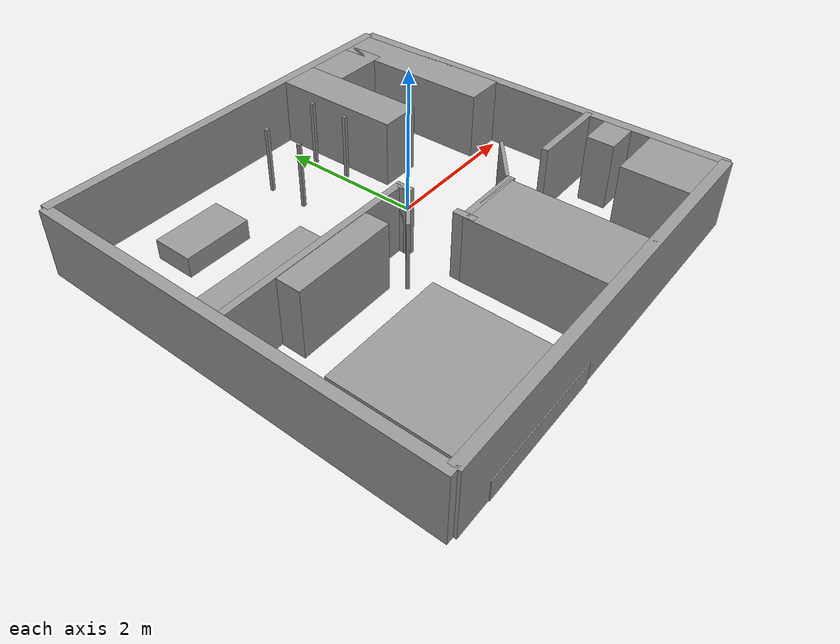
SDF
<sdf version="1.7">
 <model name="Apartment">
  <link name="link_0">
   <inertial>
    <mass>1</mass>
    <inertia>
     <ixx>0.166667</ixx>
     <ixy>0</ixy>
     <ixz>0</ixz>
     <iyy>0.166667</iyy>
     <iyz>0</iyz>
     <izz>0.166667</izz>
    </inertia>
   </inertial>
   <pose>-3.2479 -0.052565 0.051852 0 -0 0</pose>
   <visual name="visual">
    <geometry><box><size>0.15 6 1</size></box></geometry>
    <material>
     <lighting>1</lighting>
     <script><uri>file://media/materials/scripts/gazebo.material</uri><name>Gazebo/Grey</name></script>
     <shader type="pixel"><normal_map>__default__</normal_map></shader>
     <ambient>0.3 0.3 0.3 1</ambient>
     <diffuse>0.7 0.7 0.7 1</diffuse>
     <specular>0.01 0.01 0.01 1</specular>
     <emissive>0 0 0 1</emissive>
    </material>
   </visual>
   <collision name="collision">
    <geometry><box><size>0.15 6 1</size></box></geometry>
    <surface>
     <friction>
      <ode><mu>1</mu><mu2>1</mu2><fdir1>0 0 0</fdir1><slip1>0</slip1><slip2>0</slip2></ode>
      <torsional>
       <coefficient>1</coefficient>
       <patch_radius>0</patch_radius>
       <surface_radius>0</surface_radius>
       <use_patch_radius>1</use_patch_radius>
       <ode><slip>0</slip></ode>
      </torsional>
     </friction>
     <bounce><restitution_coefficient>0</restitution_coefficient><threshold>1e+06</threshold></bounce>
     <contact>
      <collide_without_contact>0</collide_without_contact>
      <collide_without_contact_bitmask>1</collide_without_contact_bitmask>
      <collide_bitmask>1</collide_bitmask>
      <ode>
       <soft_cfm>0</soft_cfm>
       <soft_erp>0.2</soft_erp>
       <kp>1e+13</kp>
       <kd>1</kd>
       <max_vel>0.01</max_vel>
       <min_depth>0</min_depth>
      </ode>
      <bullet>
       <split_impulse>1</split_impulse>
       <split_impulse_penetration_threshold>-0.01</split_impulse_penetration_threshold>
       <soft_cfm>0</soft_cfm>
       <soft_erp>0.2</soft_erp>
       <kp>1e+13</kp>
       <kd>1</kd>
      </bullet>
     </contact>
    </surface>
   </collision>
  </link>
  <link name="link_0_clone">
   <inertial>
    <mass>1</mass>
    <inertia>
     <ixx>0.166667</ixx>
     <ixy>0</ixy>
     <ixz>0</ixz>
     <iyy>0.166667</iyy>
     <iyz>0</iyz>
     <izz>0.166667</izz>
    </inertia>
   </inertial>
   <pose>2.7521 -0.052565 0.051852 0 -0 0</pose>
   <visual name="visual">
    <geometry><box><size>0.15 6 1</size></box></geometry>
    <material>
     <lighting>1</lighting>
     <script><uri>file://media/materials/scripts/gazebo.material</uri><name>Gazebo/Grey</name></script>
     <shader type="pixel"><normal_map>__default__</normal_map></shader>
     <ambient>0.3 0.3 0.3 1</ambient>
     <diffuse>0.7 0.7 0.7 1</diffuse>
     <specular>0.01 0.01 0.01 1</specular>
     <emissive>0 0 0 1</emissive>
    </material>
   </visual>
   <collision name="collision">
    <geometry><box><size>0.15 6 1</size></box></geometry>
    <surface>
     <friction>
      <ode><mu>1</mu><mu2>1</mu2><fdir1>0 0 0</fdir1><slip1>0</slip1><slip2>0</slip2></ode>
      <torsional>
       <coefficient>1</coefficient>
       <patch_radius>0</patch_radius>
       <surface_radius>0</surface_radius>
       <use_patch_radius>1</use_patch_radius>
       <ode><slip>0</slip></ode>
      </torsional>
     </friction>
     <bounce><restitution_coefficient>0</restitution_coefficient><threshold>1e+06</threshold></bounce>
     <contact>
      <collide_without_contact>0</collide_without_contact>
      <collide_without_contact_bitmask>1</collide_without_contact_bitmask>
      <collide_bitmask>1</collide_bitmask>
      <ode>
       <soft_cfm>0</soft_cfm>
       <soft_erp>0.2</soft_erp>
       <kp>1e+13</kp>
       <kd>1</kd>
       <max_vel>0.01</max_vel>
       <min_depth>0</min_depth>
      </ode>
      <bullet>
       <split_impulse>1</split_impulse>
       <split_impulse_penetration_threshold>-0.01</split_impulse_penetration_threshold>
       <soft_cfm>0</soft_cfm>
       <soft_erp>0.2</soft_erp>
       <kp>1e+13</kp>
       <kd>1</kd>
      </bullet>
     </contact>
    </surface>
   </collision>
  </link>
  <link name="link_0_clone_clone">
   <inertial>
    <mass>1</mass>
    <inertia>
     <ixx>0.166667</ixx>
     <ixy>0</ixy>
     <ixz>0</ixz>
     <iyy>0.166667</iyy>
     <iyz>0</iyz>
     <izz>0.166667</izz>
    </inertia>
   </inertial>
   <pose>-0.222232 -3.01597 0.051852 0 -0 0</pose>
   <visual name="visual">
    <geometry><box><size>6 0.15 1</size></box></geometry>
    <material>
     <lighting>1</lighting>
     <script><uri>file://media/materials/scripts/gazebo.material</uri><name>Gazebo/Grey</name></script>
     <shader type="pixel"><normal_map>__default__</normal_map></shader>
     <ambient>0.3 0.3 0.3 1</ambient>
     <diffuse>0.7 0.7 0.7 1</diffuse>
     <specular>0.01 0.01 0.01 1</specular>
     <emissive>0 0 0 1</emissive>
    </material>
   </visual>
   <collision name="collision">
    <geometry><box><size>6 0.15 1</size></box></geometry>
    <surface>
     <friction>
      <ode><mu>1</mu><mu2>1</mu2><fdir1>0 0 0</fdir1><slip1>0</slip1><slip2>0</slip2></ode>
      <torsional>
       <coefficient>1</coefficient>
       <patch_radius>0</patch_radius>
       <surface_radius>0</surface_radius>
       <use_patch_radius>1</use_patch_radius>
       <ode><slip>0</slip></ode>
      </torsional>
     </friction>
     <bounce><restitution_coefficient>0</restitution_coefficient><threshold>1e+06</threshold></bounce>
     <contact>
      <collide_without_contact>0</collide_without_contact>
      <collide_without_contact_bitmask>1</collide_without_contact_bitmask>
      <collide_bitmask>1</collide_bitmask>
      <ode>
       <soft_cfm>0</soft_cfm>
       <soft_erp>0.2</soft_erp>
       <kp>1e+13</kp>
       <kd>1</kd>
       <max_vel>0.01</max_vel>
       <min_depth>0</min_depth>
      </ode>
      <bullet>
       <split_impulse>1</split_impulse>
       <split_impulse_penetration_threshold>-0.01</split_impulse_penetration_threshold>
       <soft_cfm>0</soft_cfm>
       <soft_erp>0.2</soft_erp>
       <kp>1e+13</kp>
       <kd>1</kd>
      </bullet>
     </contact>
    </surface>
   </collision>
  </link>
  <link name="link_0_clone_clone_clone">
   <inertial>
    <mass>1</mass>
    <inertia>
     <ixx>0.166667</ixx>
     <ixy>0</ixy>
     <ixz>0</ixz>
     <iyy>0.166667</iyy>
     <iyz>0</iyz>
     <izz>0.166667</izz>
    </inertia>
   </inertial>
   <pose>-0.247898 2.94744 0.051852 0 -0 0</pose>
   <visual name="visual">
    <geometry><box><size>6 0.15 1</size></box></geometry>
    <material>
     <lighting>1</lighting>
     <script><uri>file://media/materials/scripts/gazebo.material</uri><name>Gazebo/Grey</name></script>
     <shader type="pixel"><normal_map>__default__</normal_map></shader>
     <ambient>0.3 0.3 0.3 1</ambient>
     <diffuse>0.7 0.7 0.7 1</diffuse>
     <specular>0.01 0.01 0.01 1</specular>
     <emissive>0 0 0 1</emissive>
    </material>
   </visual>
   <collision name="collision">
    <geometry><box><size>6 0.15 1</size></box></geometry>
    <surface>
     <friction>
      <ode><mu>1</mu><mu2>1</mu2><fdir1>0 0 0</fdir1><slip1>0</slip1><slip2>0</slip2></ode>
      <torsional>
       <coefficient>1</coefficient>
       <patch_radius>0</patch_radius>
       <surface_radius>0</surface_radius>
       <use_patch_radius>1</use_patch_radius>
       <ode><slip>0</slip></ode>
      </torsional>
     </friction>
     <bounce><restitution_coefficient>0</restitution_coefficient><threshold>1e+06</threshold></bounce>
     <contact>
      <collide_without_contact>0</collide_without_contact>
      <collide_without_contact_bitmask>1</collide_without_contact_bitmask>
      <collide_bitmask>1</collide_bitmask>
      <ode>
       <soft_cfm>0</soft_cfm>
       <soft_erp>0.2</soft_erp>
       <kp>1e+13</kp>
       <kd>1</kd>
       <max_vel>0.01</max_vel>
       <min_depth>0</min_depth>
      </ode>
      <bullet>
       <split_impulse>1</split_impulse>
       <split_impulse_penetration_threshold>-0.01</split_impulse_penetration_threshold>
       <soft_cfm>0</soft_cfm>
       <soft_erp>0.2</soft_erp>
       <kp>1e+13</kp>
       <kd>1</kd>
      </bullet>
     </contact>
    </surface>
   </collision>
  </link>
  <link name="link_0_clone_clone_clone_clone">
   <inertial>
    <mass>1</mass>
    <inertia>
     <ixx>0.166667</ixx>
     <ixy>0</ixy>
     <ixz>0</ixz>
     <iyy>0.166667</iyy>
     <iyz>0</iyz>
     <izz>0.166667</izz>
    </inertia>
   </inertial>
   <pose>-1.7479 -0.052565 0.051852 0 -0 0</pose>
   <visual name="visual">
    <geometry><box><size>3 0.1 1</size></box></geometry>
    <material>
     <lighting>1</lighting>
     <script><uri>file://media/materials/scripts/gazebo.material</uri><name>Gazebo/Grey</name></script>
     <shader type="pixel"><normal_map>__default__</normal_map></shader>
     <ambient>0.3 0.3 0.3 1</ambient>
     <diffuse>0.7 0.7 0.7 1</diffuse>
     <specular>0.01 0.01 0.01 1</specular>
     <emissive>0 0 0 1</emissive>
    </material>
   </visual>
   <collision name="collision">
    <geometry><box><size>3 0.1 1</size></box></geometry>
    <surface>
     <friction>
      <ode><mu>1</mu><mu2>1</mu2><fdir1>0 0 0</fdir1><slip1>0</slip1><slip2>0</slip2></ode>
      <torsional>
       <coefficient>1</coefficient>
       <patch_radius>0</patch_radius>
       <surface_radius>0</surface_radius>
       <use_patch_radius>1</use_patch_radius>
       <ode><slip>0</slip></ode>
      </torsional>
     </friction>
     <bounce><restitution_coefficient>0</restitution_coefficient><threshold>1e+06</threshold></bounce>
     <contact>
      <collide_without_contact>0</collide_without_contact>
      <collide_without_contact_bitmask>1</collide_without_contact_bitmask>
      <collide_bitmask>1</collide_bitmask>
      <ode>
       <soft_cfm>0</soft_cfm>
       <soft_erp>0.2</soft_erp>
       <kp>1e+13</kp>
       <kd>1</kd>
       <max_vel>0.01</max_vel>
       <min_depth>0</min_depth>
      </ode>
      <bullet>
       <split_impulse>1</split_impulse>
       <split_impulse_penetration_threshold>-0.01</split_impulse_penetration_threshold>
       <soft_cfm>0</soft_cfm>
       <soft_erp>0.2</soft_erp>
       <kp>1e+13</kp>
       <kd>1</kd>
      </bullet>
     </contact>
    </surface>
   </collision>
  </link>
  <link name="link_0_clone_clone_clone_clone_clone">
   <inertial>
    <mass>1</mass>
    <inertia>
     <ixx>0.166667</ixx>
     <ixy>0</ixy>
     <ixz>0</ixz>
     <iyy>0.166667</iyy>
     <iyz>0</iyz>
     <izz>0.166667</izz>
    </inertia>
   </inertial>
   <pose>2.1521 -1.05256 0.051852 0 -0 0</pose>
   <visual name="visual">
    <geometry><box><size>1.2 0.1 1</size></box></geometry>
    <material>
     <lighting>1</lighting>
     <script><uri>file://media/materials/scripts/gazebo.material</uri><name>Gazebo/Grey</name></script>
     <shader type="pixel"><normal_map>__default__</normal_map></shader>
     <ambient>0.3 0.3 0.3 1</ambient>
     <diffuse>0.7 0.7 0.7 1</diffuse>
     <specular>0.01 0.01 0.01 1</specular>
     <emissive>0 0 0 1</emissive>
    </material>
   </visual>
   <collision name="collision">
    <geometry><box><size>1.2 0.1 1</size></box></geometry>
    <surface>
     <friction>
      <ode><mu>1</mu><mu2>1</mu2><fdir1>0 0 0</fdir1><slip1>0</slip1><slip2>0</slip2></ode>
      <torsional>
       <coefficient>1</coefficient>
       <patch_radius>0</patch_radius>
       <surface_radius>0</surface_radius>
       <use_patch_radius>1</use_patch_radius>
       <ode><slip>0</slip></ode>
      </torsional>
     </friction>
     <bounce><restitution_coefficient>0</restitution_coefficient><threshold>1e+06</threshold></bounce>
     <contact>
      <collide_without_contact>0</collide_without_contact>
      <collide_without_contact_bitmask>1</collide_without_contact_bitmask>
      <collide_bitmask>1</collide_bitmask>
      <ode>
       <soft_cfm>0</soft_cfm>
       <soft_erp>0.2</soft_erp>
       <kp>1e+13</kp>
       <kd>1</kd>
       <max_vel>0.01</max_vel>
       <min_depth>0</min_depth>
      </ode>
      <bullet>
       <split_impulse>1</split_impulse>
       <split_impulse_penetration_threshold>-0.01</split_impulse_penetration_threshold>
       <soft_cfm>0</soft_cfm>
       <soft_erp>0.2</soft_erp>
       <kp>1e+13</kp>
       <kd>1</kd>
      </bullet>
     </contact>
    </surface>
   </collision>
  </link>
  <link name="link_0_clone_clone_clone_clone_clone_clone">
   <inertial>
    <mass>1</mass>
    <inertia>
     <ixx>0.166667</ixx>
     <ixy>0</ixy>
     <ixz>0</ixz>
     <iyy>0.166667</iyy>
     <iyz>0</iyz>
     <izz>0.166667</izz>
    </inertia>
   </inertial>
   <pose>0.252102 -1.05256 0.051852 0 -0 0</pose>
   <visual name="visual">
    <geometry><box><size>1 0.1 1</size></box></geometry>
    <material>
     <lighting>1</lighting>
     <script><uri>file://media/materials/scripts/gazebo.material</uri><name>Gazebo/Grey</name></script>
     <shader type="pixel"><normal_map>__default__</normal_map></shader>
     <ambient>0.3 0.3 0.3 1</ambient>
     <diffuse>0.7 0.7 0.7 1</diffuse>
     <specular>0.01 0.01 0.01 1</specular>
     <emissive>0 0 0 1</emissive>
    </material>
   </visual>
   <collision name="collision">
    <geometry><box><size>1 0.1 1</size></box></geometry>
    <surface>
     <friction>
      <ode><mu>1</mu><mu2>1</mu2><fdir1>0 0 0</fdir1><slip1>0</slip1><slip2>0</slip2></ode>
      <torsional>
       <coefficient>1</coefficient>
       <patch_radius>0</patch_radius>
       <surface_radius>0</surface_radius>
       <use_patch_radius>1</use_patch_radius>
       <ode><slip>0</slip></ode>
      </torsional>
     </friction>
     <bounce><restitution_coefficient>0</restitution_coefficient><threshold>1e+06</threshold></bounce>
     <contact>
      <collide_without_contact>0</collide_without_contact>
      <collide_without_contact_bitmask>1</collide_without_contact_bitmask>
      <collide_bitmask>1</collide_bitmask>
      <ode>
       <soft_cfm>0</soft_cfm>
       <soft_erp>0.2</soft_erp>
       <kp>1e+13</kp>
       <kd>1</kd>
       <max_vel>0.01</max_vel>
       <min_depth>0</min_depth>
      </ode>
      <bullet>
       <split_impulse>1</split_impulse>
       <split_impulse_penetration_threshold>-0.01</split_impulse_penetration_threshold>
       <soft_cfm>0</soft_cfm>
       <soft_erp>0.2</soft_erp>
       <kp>1e+13</kp>
       <kd>1</kd>
      </bullet>
     </contact>
    </surface>
   </collision>
  </link>
  <link name="link_0_clone_clone_clone_clone_clone_clone_clone">
   <inertial>
    <mass>9.80531</mass>
    <inertia><ixx>4.08555</ixx><ixy>0</ixy><ixz>0</ixz><iyy>1.60274</iyy><iyz>0</iyz><izz>4.05407</izz></inertia>
   </inertial>
   <pose>0.197236 -2.05256 0.051852 0 -0 0</pose>
   <visual name="visual">
    <geometry><box><size>1 2 1</size></box></geometry>
    <material>
     <lighting>1</lighting>
     <script><uri>file://media/materials/scripts/gazebo.material</uri><name>Gazebo/Grey</name></script>
     <shader type="pixel"><normal_map>__default__</normal_map></shader>
     <ambient>0.3 0.3 0.3 1</ambient>
     <diffuse>0.7 0.7 0.7 1</diffuse>
     <specular>0.01 0.01 0.01 1</specular>
     <emissive>0 0 0 1</emissive>
    </material>
   </visual>
   <collision name="collision">
    <geometry><box><size>1 2 1</size></box></geometry>
    <surface>
     <friction>
      <ode><mu>1</mu><mu2>1</mu2><fdir1>0 0 0</fdir1><slip1>0</slip1><slip2>0</slip2></ode>
      <torsional>
       <coefficient>1</coefficient>
       <patch_radius>0</patch_radius>
       <surface_radius>0</surface_radius>
       <use_patch_radius>1</use_patch_radius>
       <ode><slip>0</slip></ode>
      </torsional>
     </friction>
     <bounce><restitution_coefficient>0</restitution_coefficient><threshold>1e+06</threshold></bounce>
     <contact>
      <collide_without_contact>0</collide_without_contact>
      <collide_without_contact_bitmask>1</collide_without_contact_bitmask>
      <collide_bitmask>1</collide_bitmask>
      <ode>
       <soft_cfm>0</soft_cfm>
       <soft_erp>0.2</soft_erp>
       <kp>1e+13</kp>
       <kd>1</kd>
       <max_vel>0.01</max_vel>
       <min_depth>0</min_depth>
      </ode>
      <bullet>
       <split_impulse>1</split_impulse>
       <split_impulse_penetration_threshold>-0.01</split_impulse_penetration_threshold>
       <soft_cfm>0</soft_cfm>
       <soft_erp>0.2</soft_erp>
       <kp>1e+13</kp>
       <kd>1</kd>
      </bullet>
     </contact>
    </surface>
   </collision>
  </link>
  <link name="link_0_clone_clone_clone_clone_clone_clone_clone_0">
   <inertial>
    <mass>1</mass>
    <inertia>
     <ixx>0.166667</ixx>
     <ixy>0</ixy>
     <ixz>0</ixz>
     <iyy>0.166667</iyy>
     <iyz>0</iyz>
     <izz>0.166667</izz>
    </inertia>
   </inertial>
   <pose>-0.247898 -1.05256 0.051852 0 -0 0</pose>
   <visual name="visual">
    <geometry><box><size>0.1 0.3 1</size></box></geometry>
    <material>
     <lighting>1</lighting>
     <script><uri>file://media/materials/scripts/gazebo.material</uri><name>Gazebo/Grey</name></script>
     <shader type="pixel"><normal_map>__default__</normal_map></shader>
     <ambient>0.3 0.3 0.3 1</ambient>
     <diffuse>0.7 0.7 0.7 1</diffuse>
     <specular>0.01 0.01 0.01 1</specular>
     <emissive>0 0 0 1</emissive>
    </material>
   </visual>
   <collision name="collision">
    <geometry><box><size>0.1 0.3 1</size></box></geometry>
    <surface>
     <friction>
      <ode><mu>1</mu><mu2>1</mu2><fdir1>0 0 0</fdir1><slip1>0</slip1><slip2>0</slip2></ode>
      <torsional>
       <coefficient>1</coefficient>
       <patch_radius>0</patch_radius>
       <surface_radius>0</surface_radius>
       <use_patch_radius>1</use_patch_radius>
       <ode><slip>0</slip></ode>
      </torsional>
     </friction>
     <bounce><restitution_coefficient>0</restitution_coefficient><threshold>1e+06</threshold></bounce>
     <contact>
      <collide_without_contact>0</collide_without_contact>
      <collide_without_contact_bitmask>1</collide_without_contact_bitmask>
      <collide_bitmask>1</collide_bitmask>
      <ode>
       <soft_cfm>0</soft_cfm>
       <soft_erp>0.2</soft_erp>
       <kp>1e+13</kp>
       <kd>1</kd>
       <max_vel>0.01</max_vel>
       <min_depth>0</min_depth>
      </ode>
      <bullet>
       <split_impulse>1</split_impulse>
       <split_impulse_penetration_threshold>-0.01</split_impulse_penetration_threshold>
       <soft_cfm>0</soft_cfm>
       <soft_erp>0.2</soft_erp>
       <kp>1e+13</kp>
       <kd>1</kd>
      </bullet>
     </contact>
    </surface>
   </collision>
  </link>
  <link name="link_0_clone_clone_clone_clone_clone_clone_clone_0_clone">
   <inertial>
    <mass>1</mass>
    <inertia>
     <ixx>0.166667</ixx>
     <ixy>0</ixy>
     <ixz>0</ixz>
     <iyy>0.166667</iyy>
     <iyz>0</iyz>
     <izz>0.166667</izz>
    </inertia>
   </inertial>
   <pose>-0.247898 -0.152565 0.051852 0 -0 0</pose>
   <visual name="visual">
    <geometry><box><size>0.1 0.2 1</size></box></geometry>
    <material>
     <lighting>1</lighting>
     <script><uri>file://media/materials/scripts/gazebo.material</uri><name>Gazebo/Grey</name></script>
     <shader type="pixel"><normal_map>__default__</normal_map></shader>
     <ambient>0.3 0.3 0.3 1</ambient>
     <diffuse>0.7 0.7 0.7 1</diffuse>
     <specular>0.01 0.01 0.01 1</specular>
     <emissive>0 0 0 1</emissive>
    </material>
   </visual>
   <collision name="collision">
    <geometry><box><size>0.1 0.2 1</size></box></geometry>
    <surface>
     <friction>
      <ode><mu>1</mu><mu2>1</mu2><fdir1>0 0 0</fdir1><slip1>0</slip1><slip2>0</slip2></ode>
      <torsional>
       <coefficient>1</coefficient>
       <patch_radius>0</patch_radius>
       <surface_radius>0</surface_radius>
       <use_patch_radius>1</use_patch_radius>
       <ode><slip>0</slip></ode>
      </torsional>
     </friction>
     <bounce><restitution_coefficient>0</restitution_coefficient><threshold>1e+06</threshold></bounce>
     <contact>
      <collide_without_contact>0</collide_without_contact>
      <collide_without_contact_bitmask>1</collide_without_contact_bitmask>
      <collide_bitmask>1</collide_bitmask>
      <ode>
       <soft_cfm>0</soft_cfm>
       <soft_erp>0.2</soft_erp>
       <kp>1e+13</kp>
       <kd>1</kd>
       <max_vel>0.01</max_vel>
       <min_depth>0</min_depth>
      </ode>
      <bullet>
       <split_impulse>1</split_impulse>
       <split_impulse_penetration_threshold>-0.01</split_impulse_penetration_threshold>
       <soft_cfm>0</soft_cfm>
       <soft_erp>0.2</soft_erp>
       <kp>1e+13</kp>
       <kd>1</kd>
      </bullet>
     </contact>
    </surface>
   </collision>
  </link>
  <link name="link_0_clone_clone_clone_clone_clone_clone_clone_0_clone_0">
   <inertial>
    <mass>1</mass>
    <inertia>
     <ixx>0.166667</ixx>
     <ixy>0</ixy>
     <ixz>0</ixz>
     <iyy>0.166667</iyy>
     <iyz>0</iyz>
     <izz>0.166667</izz>
    </inertia>
   </inertial>
   <pose>-0.247898 -0.102565 0.051852 0 -0 0</pose>
   <visual name="visual">
    <geometry><box><size>0.1 0.2 1</size></box></geometry>
    <material>
     <lighting>1</lighting>
     <script><uri>file://media/materials/scripts/gazebo.material</uri><name>Gazebo/Grey</name></script>
     <shader type="pixel"><normal_map>__default__</normal_map></shader>
     <ambient>0.3 0.3 0.3 1</ambient>
     <diffuse>0.7 0.7 0.7 1</diffuse>
     <specular>0.01 0.01 0.01 1</specular>
     <emissive>0 0 0 1</emissive>
    </material>
   </visual>
   <collision name="collision">
    <geometry><box><size>0.1 0.2 1</size></box></geometry>
    <surface>
     <friction>
      <ode><mu>1</mu><mu2>1</mu2><fdir1>0 0 0</fdir1><slip1>0</slip1><slip2>0</slip2></ode>
      <torsional>
       <coefficient>1</coefficient>
       <patch_radius>0</patch_radius>
       <surface_radius>0</surface_radius>
       <use_patch_radius>1</use_patch_radius>
       <ode><slip>0</slip></ode>
      </torsional>
     </friction>
     <bounce><restitution_coefficient>0</restitution_coefficient><threshold>1e+06</threshold></bounce>
     <contact>
      <collide_without_contact>0</collide_without_contact>
      <collide_without_contact_bitmask>1</collide_without_contact_bitmask>
      <collide_bitmask>1</collide_bitmask>
      <ode>
       <soft_cfm>0</soft_cfm>
       <soft_erp>0.2</soft_erp>
       <kp>1e+13</kp>
       <kd>1</kd>
       <max_vel>0.01</max_vel>
       <min_depth>0</min_depth>
      </ode>
      <bullet>
       <split_impulse>1</split_impulse>
       <split_impulse_penetration_threshold>-0.01</split_impulse_penetration_threshold>
       <soft_cfm>0</soft_cfm>
       <soft_erp>0.2</soft_erp>
       <kp>1e+13</kp>
       <kd>1</kd>
      </bullet>
     </contact>
    </surface>
   </collision>
  </link>
  <link name="link_0_clone_clone_clone_clone_clone_clone_clone_0_clone_1">
   <inertial>
    <mass>1</mass>
    <inertia>
     <ixx>0.166667</ixx>
     <ixy>0</ixy>
     <ixz>0</ixz>
     <iyy>0.166667</iyy>
     <iyz>0</iyz>
     <izz>0.166667</izz>
    </inertia>
   </inertial>
   <pose>-0.540177 -0.421865 0.051852 0 0 -0.9</pose>
   <visual name="visual">
    <geometry><box><size>0.05 0.7 1</size></box></geometry>
    <material>
     <lighting>1</lighting>
     <script><uri>file://media/materials/scripts/gazebo.material</uri><name>Gazebo/Grey</name></script>
     <shader type="pixel"><normal_map>__default__</normal_map></shader>
     <ambient>0.3 0.3 0.3 1</ambient>
     <diffuse>0.7 0.7 0.7 1</diffuse>
     <specular>0.01 0.01 0.01 1</specular>
     <emissive>0 0 0 1</emissive>
    </material>
   </visual>
   <collision name="collision">
    <geometry><box><size>0.05 0.7 1</size></box></geometry>
    <surface>
     <friction>
      <ode><mu>1</mu><mu2>1</mu2><fdir1>0 0 0</fdir1><slip1>0</slip1><slip2>0</slip2></ode>
      <torsional>
       <coefficient>1</coefficient>
       <patch_radius>0</patch_radius>
       <surface_radius>0</surface_radius>
       <use_patch_radius>1</use_patch_radius>
       <ode><slip>0</slip></ode>
      </torsional>
     </friction>
     <bounce><restitution_coefficient>0</restitution_coefficient><threshold>1e+06</threshold></bounce>
     <contact>
      <collide_without_contact>0</collide_without_contact>
      <collide_without_contact_bitmask>1</collide_without_contact_bitmask>
      <collide_bitmask>1</collide_bitmask>
      <ode>
       <soft_cfm>0</soft_cfm>
       <soft_erp>0.2</soft_erp>
       <kp>1e+13</kp>
       <kd>1</kd>
       <max_vel>0.01</max_vel>
       <min_depth>0</min_depth>
      </ode>
      <bullet>
       <split_impulse>1</split_impulse>
       <split_impulse_penetration_threshold>-0.01</split_impulse_penetration_threshold>
       <soft_cfm>0</soft_cfm>
       <soft_erp>0.2</soft_erp>
       <kp>1e+13</kp>
       <kd>1</kd>
      </bullet>
     </contact>
    </surface>
   </collision>
  </link>
  <link name="link_0_clone_clone_clone_clone_clone_clone_clone_0_clone_1_clone_0">
   <inertial>
    <mass>1</mass>
    <inertia>
     <ixx>0.166667</ixx>
     <ixy>0</ixy>
     <ixz>0</ixz>
     <iyy>0.166667</iyy>
     <iyz>0</iyz>
     <izz>0.166667</izz>
    </inertia>
   </inertial>
   <pose>1.05963 -0.743859 0.051852 0 0 -0.9</pose>
   <visual name="visual">
    <geometry><box><size>0.05 0.8 1</size></box></geometry>
    <material>
     <lighting>1</lighting>
     <script><uri>file://media/materials/scripts/gazebo.material</uri><name>Gazebo/Grey</name></script>
     <shader type="pixel"><normal_map>__default__</normal_map></shader>
     <ambient>0.3 0.3 0.3 1</ambient>
     <diffuse>0.7 0.7 0.7 1</diffuse>
     <specular>0.01 0.01 0.01 1</specular>
     <emissive>0 0 0 1</emissive>
    </material>
   </visual>
   <collision name="collision">
    <geometry><box><size>0.05 0.8 1</size></box></geometry>
    <surface>
     <friction>
      <ode><mu>1</mu><mu2>1</mu2><fdir1>0 0 0</fdir1><slip1>0</slip1><slip2>0</slip2></ode>
      <torsional>
       <coefficient>1</coefficient>
       <patch_radius>0</patch_radius>
       <surface_radius>0</surface_radius>
       <use_patch_radius>1</use_patch_radius>
       <ode><slip>0</slip></ode>
      </torsional>
     </friction>
     <bounce><restitution_coefficient>0</restitution_coefficient><threshold>1e+06</threshold></bounce>
     <contact>
      <collide_without_contact>0</collide_without_contact>
      <collide_without_contact_bitmask>1</collide_without_contact_bitmask>
      <collide_bitmask>1</collide_bitmask>
      <ode>
       <soft_cfm>0</soft_cfm>
       <soft_erp>0.2</soft_erp>
       <kp>1e+13</kp>
       <kd>1</kd>
       <max_vel>0.01</max_vel>
       <min_depth>0</min_depth>
      </ode>
      <bullet>
       <split_impulse>1</split_impulse>
       <split_impulse_penetration_threshold>-0.01</split_impulse_penetration_threshold>
       <soft_cfm>0</soft_cfm>
       <soft_erp>0.2</soft_erp>
       <kp>1e+13</kp>
       <kd>1</kd>
      </bullet>
     </contact>
    </surface>
   </collision>
  </link>
  <link name="link_1">
   <inertial>
    <mass>1</mass>
    <inertia>
     <ixx>0.166667</ixx>
     <ixy>0</ixy>
     <ixz>0</ixz>
     <iyy>0.166667</iyy>
     <iyz>0</iyz>
     <izz>0.166667</izz>
    </inertia>
   </inertial>
   <pose>2.4021 1.69744 0.051852 0 -0 0</pose>
   <visual name="visual">
    <geometry><box><size>0.6 2.5 1</size></box></geometry>
    <material>
     <lighting>1</lighting>
     <script><uri>file://media/materials/scripts/gazebo.material</uri><name>Gazebo/Grey</name></script>
     <shader type="pixel"><normal_map>__default__</normal_map></shader>
     <ambient>0.3 0.3 0.3 1</ambient>
     <diffuse>0.7 0.7 0.7 1</diffuse>
     <specular>0.01 0.01 0.01 1</specular>
     <emissive>0 0 0 1</emissive>
    </material>
   </visual>
   <collision name="collision">
    <geometry><box><size>0.6 2.5 1</size></box></geometry>
    <surface>
     <friction>
      <ode><mu>1</mu><mu2>1</mu2><fdir1>0 0 0</fdir1><slip1>0</slip1><slip2>0</slip2></ode>
      <torsional>
       <coefficient>1</coefficient>
       <patch_radius>0</patch_radius>
       <surface_radius>0</surface_radius>
       <use_patch_radius>1</use_patch_radius>
       <ode><slip>0</slip></ode>
      </torsional>
     </friction>
     <bounce><restitution_coefficient>0</restitution_coefficient><threshold>1e+06</threshold></bounce>
     <contact>
      <collide_without_contact>0</collide_without_contact>
      <collide_without_contact_bitmask>1</collide_without_contact_bitmask>
      <collide_bitmask>1</collide_bitmask>
      <ode>
       <soft_cfm>0</soft_cfm>
       <soft_erp>0.2</soft_erp>
       <kp>1e+13</kp>
       <kd>1</kd>
       <max_vel>0.01</max_vel>
       <min_depth>0</min_depth>
      </ode>
      <bullet>
       <split_impulse>1</split_impulse>
       <split_impulse_penetration_threshold>-0.01</split_impulse_penetration_threshold>
       <soft_cfm>0</soft_cfm>
       <soft_erp>0.2</soft_erp>
       <kp>1e+13</kp>
       <kd>1</kd>
      </bullet>
     </contact>
    </surface>
   </collision>
  </link>
  <link name="link_1_clone">
   <inertial>
    <mass>1</mass>
    <inertia>
     <ixx>0.166667</ixx>
     <ixy>0</ixy>
     <ixz>0</ixz>
     <iyy>0.166667</iyy>
     <iyz>0</iyz>
     <izz>0.166667</izz>
    </inertia>
   </inertial>
   <pose>1.0521 1.94744 0.051852 0 -0 0</pose>
   <visual name="visual">
    <geometry><box><size>0.6 2 1</size></box></geometry>
    <material>
     <lighting>1</lighting>
     <script><uri>file://media/materials/scripts/gazebo.material</uri><name>Gazebo/Grey</name></script>
     <shader type="pixel"><normal_map>__default__</normal_map></shader>
     <ambient>0.3 0.3 0.3 1</ambient>
     <diffuse>0.7 0.7 0.7 1</diffuse>
     <specular>0.01 0.01 0.01 1</specular>
     <emissive>0 0 0 1</emissive>
    </material>
   </visual>
   <collision name="collision">
    <geometry><box><size>0.6 2 1</size></box></geometry>
    <surface>
     <friction>
      <ode><mu>1</mu><mu2>1</mu2><fdir1>0 0 0</fdir1><slip1>0</slip1><slip2>0</slip2></ode>
      <torsional>
       <coefficient>1</coefficient>
       <patch_radius>0</patch_radius>
       <surface_radius>0</surface_radius>
       <use_patch_radius>1</use_patch_radius>
       <ode><slip>0</slip></ode>
      </torsional>
     </friction>
     <bounce><restitution_coefficient>0</restitution_coefficient><threshold>1e+06</threshold></bounce>
     <contact>
      <collide_without_contact>0</collide_without_contact>
      <collide_without_contact_bitmask>1</collide_without_contact_bitmask>
      <collide_bitmask>1</collide_bitmask>
      <ode>
       <soft_cfm>0</soft_cfm>
       <soft_erp>0.2</soft_erp>
       <kp>1e+13</kp>
       <kd>1</kd>
       <max_vel>0.01</max_vel>
       <min_depth>0</min_depth>
      </ode>
      <bullet>
       <split_impulse>1</split_impulse>
       <split_impulse_penetration_threshold>-0.01</split_impulse_penetration_threshold>
       <soft_cfm>0</soft_cfm>
       <soft_erp>0.2</soft_erp>
       <kp>1e+13</kp>
       <kd>1</kd>
      </bullet>
     </contact>
    </surface>
   </collision>
  </link>
  <link name="link_1_clone_clone">
   <inertial>
    <mass>1</mass>
    <inertia>
     <ixx>0.166667</ixx>
     <ixy>0</ixy>
     <ixz>0</ixz>
     <iyy>0.166667</iyy>
     <iyz>0</iyz>
     <izz>0.166667</izz>
    </inertia>
   </inertial>
   <pose>1.7521 2.59743 0.051852 0 -0 0</pose>
   <visual name="visual">
    <geometry><box><size>1 0.6 1</size></box></geometry>
    <material>
     <lighting>1</lighting>
     <script><uri>file://media/materials/scripts/gazebo.material</uri><name>Gazebo/Grey</name></script>
     <shader type="pixel"><normal_map>__default__</normal_map></shader>
     <ambient>0.3 0.3 0.3 1</ambient>
     <diffuse>0.7 0.7 0.7 1</diffuse>
     <specular>0.01 0.01 0.01 1</specular>
     <emissive>0 0 0 1</emissive>
    </material>
   </visual>
   <collision name="collision">
    <geometry><box><size>1 0.6 1</size></box></geometry>
    <surface>
     <friction>
      <ode><mu>1</mu><mu2>1</mu2><fdir1>0 0 0</fdir1><slip1>0</slip1><slip2>0</slip2></ode>
      <torsional>
       <coefficient>1</coefficient>
       <patch_radius>0</patch_radius>
       <surface_radius>0</surface_radius>
       <use_patch_radius>1</use_patch_radius>
       <ode><slip>0</slip></ode>
      </torsional>
     </friction>
     <bounce><restitution_coefficient>0</restitution_coefficient><threshold>1e+06</threshold></bounce>
     <contact>
      <collide_without_contact>0</collide_without_contact>
      <collide_without_contact_bitmask>1</collide_without_contact_bitmask>
      <collide_bitmask>1</collide_bitmask>
      <ode>
       <soft_cfm>0</soft_cfm>
       <soft_erp>0.2</soft_erp>
       <kp>1e+13</kp>
       <kd>1</kd>
       <max_vel>0.01</max_vel>
       <min_depth>0</min_depth>
      </ode>
      <bullet>
       <split_impulse>1</split_impulse>
       <split_impulse_penetration_threshold>-0.01</split_impulse_penetration_threshold>
       <soft_cfm>0</soft_cfm>
       <soft_erp>0.2</soft_erp>
       <kp>1e+13</kp>
       <kd>1</kd>
      </bullet>
     </contact>
    </surface>
   </collision>
  </link>
  <link name="link_2">
   <inertial>
    <mass>1</mass>
    <inertia>
     <ixx>0.166667</ixx>
     <ixy>0</ixy>
     <ixz>0</ixz>
     <iyy>0.166667</iyy>
     <iyz>0</iyz>
     <izz>0.166667</izz>
    </inertia>
   </inertial>
   <pose>2.3021 -2.50257 0.051852 0 -0 0</pose>
   <visual name="visual">
    <geometry><box><size>1 1 1</size></box></geometry>
    <material>
     <lighting>1</lighting>
     <script><uri>file://media/materials/scripts/gazebo.material</uri><name>Gazebo/Grey</name></script>
     <shader type="pixel"><normal_map>__default__</normal_map></shader>
     <ambient>0.3 0.3 0.3 1</ambient>
     <diffuse>0.7 0.7 0.7 1</diffuse>
     <specular>0.01 0.01 0.01 1</specular>
     <emissive>0 0 0 1</emissive>
    </material>
   </visual>
   <collision name="collision">
    <geometry><box><size>1 1 1</size></box></geometry>
    <surface>
     <friction>
      <ode><mu>1</mu><mu2>1</mu2><fdir1>0 0 0</fdir1><slip1>0</slip1><slip2>0</slip2></ode>
      <torsional>
       <coefficient>1</coefficient>
       <patch_radius>0</patch_radius>
       <surface_radius>0</surface_radius>
       <use_patch_radius>1</use_patch_radius>
       <ode><slip>0</slip></ode>
      </torsional>
     </friction>
     <bounce><restitution_coefficient>0</restitution_coefficient><threshold>1e+06</threshold></bounce>
     <contact>
      <collide_without_contact>0</collide_without_contact>
      <collide_without_contact_bitmask>1</collide_without_contact_bitmask>
      <collide_bitmask>1</collide_bitmask>
      <ode>
       <soft_cfm>0</soft_cfm>
       <soft_erp>0.2</soft_erp>
       <kp>1e+13</kp>
       <kd>1</kd>
       <max_vel>0.01</max_vel>
       <min_depth>0</min_depth>
      </ode>
      <bullet>
       <split_impulse>1</split_impulse>
       <split_impulse_penetration_threshold>-0.01</split_impulse_penetration_threshold>
       <soft_cfm>0</soft_cfm>
       <soft_erp>0.2</soft_erp>
       <kp>1e+13</kp>
       <kd>1</kd>
      </bullet>
     </contact>
    </surface>
   </collision>
  </link>
  <link name="link_2_clone">
   <inertial>
    <mass>1</mass>
    <inertia>
     <ixx>0.166667</ixx>
     <ixy>0</ixy>
     <ixz>0</ixz>
     <iyy>0.166667</iyy>
     <iyz>0</iyz>
     <izz>0.166667</izz>
    </inertia>
   </inertial>
   <pose>2.4707 -1.52791 0.051852 0 -0 0</pose>
   <visual name="visual">
    <geometry><box><size>0.6 0.4 1</size></box></geometry>
    <material>
     <lighting>1</lighting>
     <script><uri>file://media/materials/scripts/gazebo.material</uri><name>Gazebo/Grey</name></script>
     <shader type="pixel"><normal_map>__default__</normal_map></shader>
     <ambient>0.3 0.3 0.3 1</ambient>
     <diffuse>0.7 0.7 0.7 1</diffuse>
     <specular>0.01 0.01 0.01 1</specular>
     <emissive>0 0 0 1</emissive>
    </material>
   </visual>
   <collision name="collision">
    <geometry><box><size>0.6 0.4 1</size></box></geometry>
    <surface>
     <friction>
      <ode><mu>1</mu><mu2>1</mu2><fdir1>0 0 0</fdir1><slip1>0</slip1><slip2>0</slip2></ode>
      <torsional>
       <coefficient>1</coefficient>
       <patch_radius>0</patch_radius>
       <surface_radius>0</surface_radius>
       <use_patch_radius>1</use_patch_radius>
       <ode><slip>0</slip></ode>
      </torsional>
     </friction>
     <bounce><restitution_coefficient>0</restitution_coefficient><threshold>1e+06</threshold></bounce>
     <contact>
      <collide_without_contact>0</collide_without_contact>
      <collide_without_contact_bitmask>1</collide_without_contact_bitmask>
      <collide_bitmask>1</collide_bitmask>
      <ode>
       <soft_cfm>0</soft_cfm>
       <soft_erp>0.2</soft_erp>
       <kp>1e+13</kp>
       <kd>1</kd>
       <max_vel>0.01</max_vel>
       <min_depth>0</min_depth>
      </ode>
      <bullet>
       <split_impulse>1</split_impulse>
       <split_impulse_penetration_threshold>-0.01</split_impulse_penetration_threshold>
       <soft_cfm>0</soft_cfm>
       <soft_erp>0.2</soft_erp>
       <kp>1e+13</kp>
       <kd>1</kd>
      </bullet>
     </contact>
    </surface>
   </collision>
  </link>
  <link name="link_3">
   <inertial>
    <mass>0.879159</mass>
    <inertia>
     <ixx>0.0823232</ixx>
     <ixy>0</ixy>
     <ixz>0</ixz>
     <iyy>0.238105</iyy>
     <iyz>0</iyz>
     <izz>0.173902</izz>
    </inertia>
   </inertial>
   <pose>-1.69049 -0.282398 0.051852 0 -0 0</pose>
   <visual name="visual">
    <geometry><box><size>1.5 0.35 1</size></box></geometry>
    <material>
     <lighting>1</lighting>
     <script><uri>file://media/materials/scripts/gazebo.material</uri><name>Gazebo/Grey</name></script>
     <shader type="pixel"><normal_map>__default__</normal_map></shader>
     <ambient>0.3 0.3 0.3 1</ambient>
     <diffuse>0.7 0.7 0.7 1</diffuse>
     <specular>0.01 0.01 0.01 1</specular>
     <emissive>0 0 0 1</emissive>
    </material>
   </visual>
   <collision name="collision">
    <geometry><box><size>1.5 0.35 1</size></box></geometry>
    <surface>
     <friction>
      <ode><mu>1</mu><mu2>1</mu2><fdir1>0 0 0</fdir1><slip1>0</slip1><slip2>0</slip2></ode>
      <torsional>
       <coefficient>1</coefficient>
       <patch_radius>0</patch_radius>
       <surface_radius>0</surface_radius>
       <use_patch_radius>1</use_patch_radius>
       <ode><slip>0</slip></ode>
      </torsional>
     </friction>
     <bounce><restitution_coefficient>0</restitution_coefficient><threshold>1e+06</threshold></bounce>
     <contact>
      <collide_without_contact>0</collide_without_contact>
      <collide_without_contact_bitmask>1</collide_without_contact_bitmask>
      <collide_bitmask>1</collide_bitmask>
      <ode>
       <soft_cfm>0</soft_cfm>
       <soft_erp>0.2</soft_erp>
       <kp>1e+13</kp>
       <kd>1</kd>
       <max_vel>0.01</max_vel>
       <min_depth>0</min_depth>
      </ode>
      <bullet>
       <split_impulse>1</split_impulse>
       <split_impulse_penetration_threshold>-0.01</split_impulse_penetration_threshold>
       <soft_cfm>0</soft_cfm>
       <soft_erp>0.2</soft_erp>
       <kp>1e+13</kp>
       <kd>1</kd>
      </bullet>
     </contact>
    </surface>
   </collision>
  </link>
  <link name="link_5">
   <inertial>
    <mass>1</mass>
    <inertia>
     <ixx>0.166667</ixx>
     <ixy>0</ixy>
     <ixz>0</ixz>
     <iyy>0.166667</iyy>
     <iyz>0</iyz>
     <izz>0.166667</izz>
    </inertia>
   </inertial>
   <pose>-1.7479 -2.05256 -0.298148 0 -0 0</pose>
   <visual name="visual">
    <geometry><box><size>1.9 2.1 0.3</size></box></geometry>
    <material>
     <lighting>1</lighting>
     <script><uri>file://media/materials/scripts/gazebo.material</uri><name>Gazebo/Grey</name></script>
     <shader type="pixel"><normal_map>__default__</normal_map></shader>
     <ambient>0.3 0.3 0.3 1</ambient>
     <diffuse>0.7 0.7 0.7 1</diffuse>
     <specular>0.01 0.01 0.01 1</specular>
     <emissive>0 0 0 1</emissive>
    </material>
   </visual>
   <collision name="collision">
    <geometry><box><size>1.9 2.1 0.3</size></box></geometry>
    <surface>
     <friction>
      <ode><mu>1</mu><mu2>1</mu2><fdir1>0 0 0</fdir1><slip1>0</slip1><slip2>0</slip2></ode>
      <torsional>
       <coefficient>1</coefficient>
       <patch_radius>0</patch_radius>
       <surface_radius>0</surface_radius>
       <use_patch_radius>1</use_patch_radius>
       <ode><slip>0</slip></ode>
      </torsional>
     </friction>
     <bounce><restitution_coefficient>0</restitution_coefficient><threshold>1e+06</threshold></bounce>
     <contact>
      <collide_without_contact>0</collide_without_contact>
      <collide_without_contact_bitmask>1</collide_without_contact_bitmask>
      <collide_bitmask>1</collide_bitmask>
      <ode>
       <soft_cfm>0</soft_cfm>
       <soft_erp>0.2</soft_erp>
       <kp>1e+13</kp>
       <kd>1</kd>
       <max_vel>0.01</max_vel>
       <min_depth>0</min_depth>
      </ode>
      <bullet>
       <split_impulse>1</split_impulse>
       <split_impulse_penetration_threshold>-0.01</split_impulse_penetration_threshold>
       <soft_cfm>0</soft_cfm>
       <soft_erp>0.2</soft_erp>
       <kp>1e+13</kp>
       <kd>1</kd>
      </bullet>
     </contact>
    </surface>
   </collision>
  </link>
  <link name="link_5_clone">
   <inertial>
    <mass>1</mass>
    <inertia>
     <ixx>0.166667</ixx>
     <ixy>0</ixy>
     <ixz>0</ixz>
     <iyy>0.166667</iyy>
     <iyz>0</iyz>
     <izz>0.166667</izz>
    </inertia>
   </inertial>
   <pose>-2.89771 -2.79315 -0.298148 0 -0 0</pose>
   <visual name="visual">
    <geometry><box><size>0.4 0.3 0.3</size></box></geometry>
    <material>
     <lighting>1</lighting>
     <script><uri>file://media/materials/scripts/gazebo.material</uri><name>Gazebo/Grey</name></script>
     <shader type="pixel"><normal_map>__default__</normal_map></shader>
     <ambient>0.3 0.3 0.3 1</ambient>
     <diffuse>0.7 0.7 0.7 1</diffuse>
     <specular>0.01 0.01 0.01 1</specular>
     <emissive>0 0 0 1</emissive>
    </material>
   </visual>
   <collision name="collision">
    <geometry><box><size>0.4 0.3 0.3</size></box></geometry>
    <surface>
     <friction>
      <ode><mu>1</mu><mu2>1</mu2><fdir1>0 0 0</fdir1><slip1>0</slip1><slip2>0</slip2></ode>
      <torsional>
       <coefficient>1</coefficient>
       <patch_radius>0</patch_radius>
       <surface_radius>0</surface_radius>
       <use_patch_radius>1</use_patch_radius>
       <ode><slip>0</slip></ode>
      </torsional>
     </friction>
     <bounce><restitution_coefficient>0</restitution_coefficient><threshold>1e+06</threshold></bounce>
     <contact>
      <collide_without_contact>0</collide_without_contact>
      <collide_without_contact_bitmask>1</collide_without_contact_bitmask>
      <collide_bitmask>1</collide_bitmask>
      <ode>
       <soft_cfm>0</soft_cfm>
       <soft_erp>0.2</soft_erp>
       <kp>1e+13</kp>
       <kd>1</kd>
       <max_vel>0.01</max_vel>
       <min_depth>0</min_depth>
      </ode>
      <bullet>
       <split_impulse>1</split_impulse>
       <split_impulse_penetration_threshold>-0.01</split_impulse_penetration_threshold>
       <soft_cfm>0</soft_cfm>
       <soft_erp>0.2</soft_erp>
       <kp>1e+13</kp>
       <kd>1</kd>
      </bullet>
     </contact>
    </surface>
   </collision>
  </link>
  <link name="link_5_clone_clone">
   <inertial>
    <mass>1</mass>
    <inertia>
     <ixx>0.166667</ixx>
     <ixy>0</ixy>
     <ixz>0</ixz>
     <iyy>0.166667</iyy>
     <iyz>0</iyz>
     <izz>0.166667</izz>
    </inertia>
   </inertial>
   <pose>-1.88869 0.481128 -0.298148 0 -0 0</pose>
   <visual name="visual">
    <geometry><box><size>1.8 1 0.3</size></box></geometry>
    <material>
     <lighting>1</lighting>
     <script><uri>file://media/materials/scripts/gazebo.material</uri><name>Gazebo/Grey</name></script>
     <shader type="pixel"><normal_map>__default__</normal_map></shader>
     <ambient>0.3 0.3 0.3 1</ambient>
     <diffuse>0.7 0.7 0.7 1</diffuse>
     <specular>0.01 0.01 0.01 1</specular>
     <emissive>0 0 0 1</emissive>
    </material>
   </visual>
   <collision name="collision">
    <geometry><box><size>1.8 1 0.3</size></box></geometry>
    <surface>
     <friction>
      <ode><mu>1</mu><mu2>1</mu2><fdir1>0 0 0</fdir1><slip1>0</slip1><slip2>0</slip2></ode>
      <torsional>
       <coefficient>1</coefficient>
       <patch_radius>0</patch_radius>
       <surface_radius>0</surface_radius>
       <use_patch_radius>1</use_patch_radius>
       <ode><slip>0</slip></ode>
      </torsional>
     </friction>
     <bounce><restitution_coefficient>0</restitution_coefficient><threshold>1e+06</threshold></bounce>
     <contact>
      <collide_without_contact>0</collide_without_contact>
      <collide_without_contact_bitmask>1</collide_without_contact_bitmask>
      <collide_bitmask>1</collide_bitmask>
      <ode>
       <soft_cfm>0</soft_cfm>
       <soft_erp>0.2</soft_erp>
       <kp>1e+13</kp>
       <kd>1</kd>
       <max_vel>0.01</max_vel>
       <min_depth>0</min_depth>
      </ode>
      <bullet>
       <split_impulse>1</split_impulse>
       <split_impulse_penetration_threshold>-0.01</split_impulse_penetration_threshold>
       <soft_cfm>0</soft_cfm>
       <soft_erp>0.2</soft_erp>
       <kp>1e+13</kp>
       <kd>1</kd>
      </bullet>
     </contact>
    </surface>
   </collision>
  </link>
  <link name="link_5_clone_clone_clone">
   <inertial>
    <mass>1</mass>
    <inertia>
     <ixx>0.166667</ixx>
     <ixy>0</ixy>
     <ixz>0</ixz>
     <iyy>0.166667</iyy>
     <iyz>0</iyz>
     <izz>0.166667</izz>
    </inertia>
   </inertial>
   <pose>-1.82611 1.90277 -0.298148 0 -0 0</pose>
   <visual name="visual">
    <geometry><box><size>1 0.6 0.3</size></box></geometry>
    <material>
     <lighting>1</lighting>
     <script><uri>file://media/materials/scripts/gazebo.material</uri><name>Gazebo/Grey</name></script>
     <shader type="pixel"><normal_map>__default__</normal_map></shader>
     <ambient>0.3 0.3 0.3 1</ambient>
     <diffuse>0.7 0.7 0.7 1</diffuse>
     <specular>0.01 0.01 0.01 1</specular>
     <emissive>0 0 0 1</emissive>
    </material>
   </visual>
   <collision name="collision">
    <geometry><box><size>1 0.6 0.3</size></box></geometry>
    <surface>
     <friction>
      <ode><mu>1</mu><mu2>1</mu2><fdir1>0 0 0</fdir1><slip1>0</slip1><slip2>0</slip2></ode>
      <torsional>
       <coefficient>1</coefficient>
       <patch_radius>0</patch_radius>
       <surface_radius>0</surface_radius>
       <use_patch_radius>1</use_patch_radius>
       <ode><slip>0</slip></ode>
      </torsional>
     </friction>
     <bounce><restitution_coefficient>0</restitution_coefficient><threshold>1e+06</threshold></bounce>
     <contact>
      <collide_without_contact>0</collide_without_contact>
      <collide_without_contact_bitmask>1</collide_without_contact_bitmask>
      <collide_bitmask>1</collide_bitmask>
      <ode>
       <soft_cfm>0</soft_cfm>
       <soft_erp>0.2</soft_erp>
       <kp>1e+13</kp>
       <kd>1</kd>
       <max_vel>0.01</max_vel>
       <min_depth>0</min_depth>
      </ode>
      <bullet>
       <split_impulse>1</split_impulse>
       <split_impulse_penetration_threshold>-0.01</split_impulse_penetration_threshold>
       <soft_cfm>0</soft_cfm>
       <soft_erp>0.2</soft_erp>
       <kp>1e+13</kp>
       <kd>1</kd>
      </bullet>
     </contact>
    </surface>
   </collision>
  </link>
  <link name="link_6">
   <inertial>
    <mass>1</mass>
    <inertia>
     <ixx>0.166667</ixx>
     <ixy>0</ixy>
     <ixz>0</ixz>
     <iyy>0.166667</iyy>
     <iyz>0</iyz>
     <izz>0.166667</izz>
    </inertia>
   </inertial>
   <pose>0.552102 2.14744 0.051852 0 -0 0</pose>
   <visual name="visual">
    <geometry><box><size>0.05 0.05 1</size></box></geometry>
    <material>
     <lighting>1</lighting>
     <script><uri>file://media/materials/scripts/gazebo.material</uri><name>Gazebo/Grey</name></script>
     <shader type="pixel"><normal_map>__default__</normal_map></shader>
     <ambient>0.3 0.3 0.3 1</ambient>
     <diffuse>0.7 0.7 0.7 1</diffuse>
     <specular>0.01 0.01 0.01 1</specular>
     <emissive>0 0 0 1</emissive>
    </material>
   </visual>
   <collision name="collision">
    <geometry><box><size>0.05 0.05 1</size></box></geometry>
    <surface>
     <friction>
      <ode><mu>1</mu><mu2>1</mu2><fdir1>0 0 0</fdir1><slip1>0</slip1><slip2>0</slip2></ode>
      <torsional>
       <coefficient>1</coefficient>
       <patch_radius>0</patch_radius>
       <surface_radius>0</surface_radius>
       <use_patch_radius>1</use_patch_radius>
       <ode><slip>0</slip></ode>
      </torsional>
     </friction>
     <bounce><restitution_coefficient>0</restitution_coefficient><threshold>1e+06</threshold></bounce>
     <contact>
      <collide_without_contact>0</collide_without_contact>
      <collide_without_contact_bitmask>1</collide_without_contact_bitmask>
      <collide_bitmask>1</collide_bitmask>
      <ode>
       <soft_cfm>0</soft_cfm>
       <soft_erp>0.2</soft_erp>
       <kp>1e+13</kp>
       <kd>1</kd>
       <max_vel>0.01</max_vel>
       <min_depth>0</min_depth>
      </ode>
      <bullet>
       <split_impulse>1</split_impulse>
       <split_impulse_penetration_threshold>-0.01</split_impulse_penetration_threshold>
       <soft_cfm>0</soft_cfm>
       <soft_erp>0.2</soft_erp>
       <kp>1e+13</kp>
       <kd>1</kd>
      </bullet>
     </contact>
    </surface>
   </collision>
  </link>
  <link name="link_6_clone">
   <inertial>
    <mass>1</mass>
    <inertia>
     <ixx>0.166667</ixx>
     <ixy>0</ixy>
     <ixz>0</ixz>
     <iyy>0.166667</iyy>
     <iyz>0</iyz>
     <izz>0.166667</izz>
    </inertia>
   </inertial>
   <pose>0.552102 1.54743 0.051852 0 -0 0</pose>
   <visual name="visual">
    <geometry><box><size>0.05 0.05 1</size></box></geometry>
    <material>
     <lighting>1</lighting>
     <script><uri>file://media/materials/scripts/gazebo.material</uri><name>Gazebo/Grey</name></script>
     <shader type="pixel"><normal_map>__default__</normal_map></shader>
     <ambient>0.3 0.3 0.3 1</ambient>
     <diffuse>0.7 0.7 0.7 1</diffuse>
     <specular>0.01 0.01 0.01 1</specular>
     <emissive>0 0 0 1</emissive>
    </material>
   </visual>
   <collision name="collision">
    <geometry><box><size>0.05 0.05 1</size></box></geometry>
    <surface>
     <friction>
      <ode><mu>1</mu><mu2>1</mu2><fdir1>0 0 0</fdir1><slip1>0</slip1><slip2>0</slip2></ode>
      <torsional>
       <coefficient>1</coefficient>
       <patch_radius>0</patch_radius>
       <surface_radius>0</surface_radius>
       <use_patch_radius>1</use_patch_radius>
       <ode><slip>0</slip></ode>
      </torsional>
     </friction>
     <bounce><restitution_coefficient>0</restitution_coefficient><threshold>1e+06</threshold></bounce>
     <contact>
      <collide_without_contact>0</collide_without_contact>
      <collide_without_contact_bitmask>1</collide_without_contact_bitmask>
      <collide_bitmask>1</collide_bitmask>
      <ode>
       <soft_cfm>0</soft_cfm>
       <soft_erp>0.2</soft_erp>
       <kp>1e+13</kp>
       <kd>1</kd>
       <max_vel>0.01</max_vel>
       <min_depth>0</min_depth>
      </ode>
      <bullet>
       <split_impulse>1</split_impulse>
       <split_impulse_penetration_threshold>-0.01</split_impulse_penetration_threshold>
       <soft_cfm>0</soft_cfm>
       <soft_erp>0.2</soft_erp>
       <kp>1e+13</kp>
       <kd>1</kd>
      </bullet>
     </contact>
    </surface>
   </collision>
  </link>
  <link name="link_6_clone_clone">
   <inertial>
    <mass>1</mass>
    <inertia>
     <ixx>0.166667</ixx>
     <ixy>0</ixy>
     <ixz>0</ixz>
     <iyy>0.166667</iyy>
     <iyz>0</iyz>
     <izz>0.166667</izz>
    </inertia>
   </inertial>
   <pose>-0.347898 1.54743 0.051852 0 -0 0</pose>
   <visual name="visual">
    <geometry><box><size>0.05 0.05 1</size></box></geometry>
    <material>
     <lighting>1</lighting>
     <script><uri>file://media/materials/scripts/gazebo.material</uri><name>Gazebo/Grey</name></script>
     <shader type="pixel"><normal_map>__default__</normal_map></shader>
     <ambient>0.3 0.3 0.3 1</ambient>
     <diffuse>0.7 0.7 0.7 1</diffuse>
     <specular>0.01 0.01 0.01 1</specular>
     <emissive>0 0 0 1</emissive>
    </material>
   </visual>
   <collision name="collision">
    <geometry><box><size>0.05 0.05 1</size></box></geometry>
    <surface>
     <friction>
      <ode><mu>1</mu><mu2>1</mu2><fdir1>0 0 0</fdir1><slip1>0</slip1><slip2>0</slip2></ode>
      <torsional>
       <coefficient>1</coefficient>
       <patch_radius>0</patch_radius>
       <surface_radius>0</surface_radius>
       <use_patch_radius>1</use_patch_radius>
       <ode><slip>0</slip></ode>
      </torsional>
     </friction>
     <bounce><restitution_coefficient>0</restitution_coefficient><threshold>1e+06</threshold></bounce>
     <contact>
      <collide_without_contact>0</collide_without_contact>
      <collide_without_contact_bitmask>1</collide_without_contact_bitmask>
      <collide_bitmask>1</collide_bitmask>
      <ode>
       <soft_cfm>0</soft_cfm>
       <soft_erp>0.2</soft_erp>
       <kp>1e+13</kp>
       <kd>1</kd>
       <max_vel>0.01</max_vel>
       <min_depth>0</min_depth>
      </ode>
      <bullet>
       <split_impulse>1</split_impulse>
       <split_impulse_penetration_threshold>-0.01</split_impulse_penetration_threshold>
       <soft_cfm>0</soft_cfm>
       <soft_erp>0.2</soft_erp>
       <kp>1e+13</kp>
       <kd>1</kd>
      </bullet>
     </contact>
    </surface>
   </collision>
  </link>
  <link name="link_6_clone_clone_clone">
   <inertial>
    <mass>1</mass>
    <inertia>
     <ixx>0.166667</ixx>
     <ixy>0</ixy>
     <ixz>0</ixz>
     <iyy>0.166667</iyy>
     <iyz>0</iyz>
     <izz>0.166667</izz>
    </inertia>
   </inertial>
   <pose>-0.347898 2.14744 0.051852 0 -0 0</pose>
   <visual name="visual">
    <geometry><box><size>0.05 0.05 1</size></box></geometry>
    <material>
     <lighting>1</lighting>
     <script><uri>file://media/materials/scripts/gazebo.material</uri><name>Gazebo/Grey</name></script>
     <shader type="pixel"><normal_map>__default__</normal_map></shader>
     <ambient>0.3 0.3 0.3 1</ambient>
     <diffuse>0.7 0.7 0.7 1</diffuse>
     <specular>0.01 0.01 0.01 1</specular>
     <emissive>0 0 0 1</emissive>
    </material>
   </visual>
   <collision name="collision">
    <geometry><box><size>0.05 0.05 1</size></box></geometry>
    <surface>
     <friction>
      <ode><mu>1</mu><mu2>1</mu2><fdir1>0 0 0</fdir1><slip1>0</slip1><slip2>0</slip2></ode>
      <torsional>
       <coefficient>1</coefficient>
       <patch_radius>0</patch_radius>
       <surface_radius>0</surface_radius>
       <use_patch_radius>1</use_patch_radius>
       <ode><slip>0</slip></ode>
      </torsional>
     </friction>
     <bounce><restitution_coefficient>0</restitution_coefficient><threshold>1e+06</threshold></bounce>
     <contact>
      <collide_without_contact>0</collide_without_contact>
      <collide_without_contact_bitmask>1</collide_without_contact_bitmask>
      <collide_bitmask>1</collide_bitmask>
      <ode>
       <soft_cfm>0</soft_cfm>
       <soft_erp>0.2</soft_erp>
       <kp>1e+13</kp>
       <kd>1</kd>
       <max_vel>0.01</max_vel>
       <min_depth>0</min_depth>
      </ode>
      <bullet>
       <split_impulse>1</split_impulse>
       <split_impulse_penetration_threshold>-0.01</split_impulse_penetration_threshold>
       <soft_cfm>0</soft_cfm>
       <soft_erp>0.2</soft_erp>
       <kp>1e+13</kp>
       <kd>1</kd>
      </bullet>
     </contact>
    </surface>
   </collision>
  </link>
  <static>0</static>
 </model>
</sdf>
